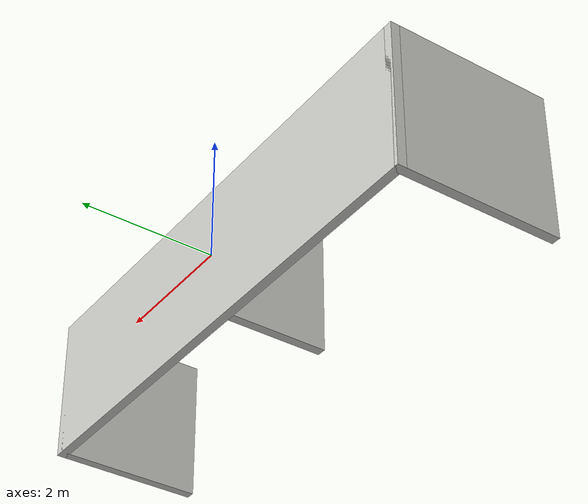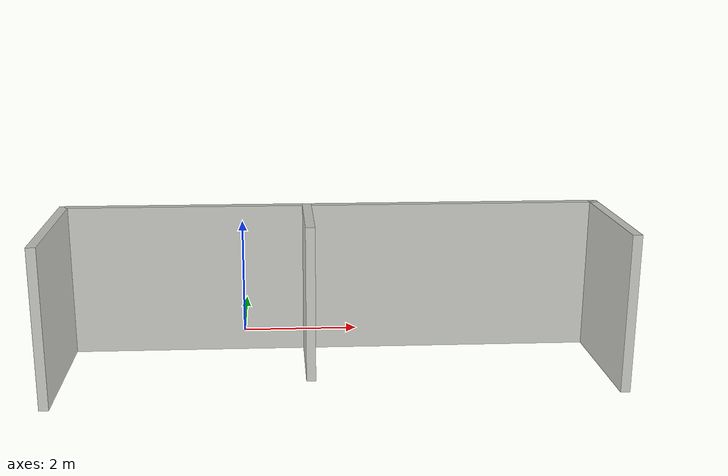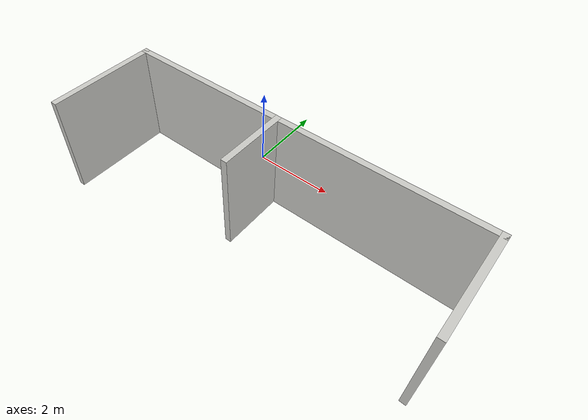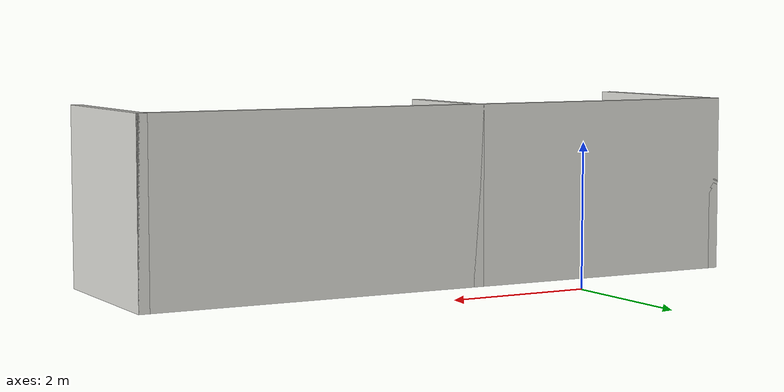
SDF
<?xml version='1.0'?>
<sdf version='1.7'>
  <model name='wall'>
    <pose>1.515 -1.8175 0 0 -0 0</pose>
    <link name='Wall_10'>
      <collision name='Wall_10_Collision'>
        <geometry>
          <box>
            <size>9 0.15 2.5</size>
          </box>
        </geometry>
        <pose>0 0 1.25 0 -0 0</pose>
      </collision>
      <visual name='Wall_10_Visual'>
        <pose>0 0 1.25 0 -0 0</pose>
        <geometry>
          <box>
            <size>9 0.15 2.5</size>
          </box>
        </geometry>
        <material>
          <script>
            <uri>file://media/materials/scripts/gazebo.material</uri>
            <name>Gazebo/CeilingTiled</name>
          </script>
          <ambient>1 0.764706 0.305882 1</ambient>
        </material>
        <meta>
          <layer>0</layer>
        </meta>
      </visual>
      <pose>0 0.8575 0 0 -0 0</pose>
    </link>
    <link name='Wall_11'>
      <collision name='Wall_11_Collision'>
        <geometry>
          <box>
            <size>2.5 0.15 2.5</size>
          </box>
        </geometry>
        <pose>0 0 1.25 0 -0 0</pose>
      </collision>
      <visual name='Wall_11_Visual'>
        <pose>0 0 1.25 0 -0 0</pose>
        <geometry>
          <box>
            <size>2.5 0.15 2.5</size>
          </box>
        </geometry>
        <material>
          <script>
            <uri>file://media/materials/scripts/gazebo.material</uri>
            <name>Gazebo/CeilingTiled</name>
          </script>
          <ambient>1 0.764706 0.305882 1</ambient>
        </material>
        <meta>
          <layer>0</layer>
        </meta>
      </visual>
      <pose>4.425 -0.3175 0 0 -0 -1.5708</pose>
    </link>
    <link name='Wall_13'>
      <collision name='Wall_13_Collision'>
        <geometry>
          <box>
            <size>1.75 0.15 2.5</size>
          </box>
        </geometry>
        <pose>0 0 1.25 0 -0 0</pose>
      </collision>
      <visual name='Wall_13_Visual'>
        <pose>0 0 1.25 0 -0 0</pose>
        <geometry>
          <box>
            <size>1.75 0.15 2.5</size>
          </box>
        </geometry>
        <material>
          <script>
            <uri>file://media/materials/scripts/gazebo.material</uri>
            <name>Gazebo/CeilingTiled</name>
          </script>
          <ambient>1 0.764706 0.305882 1</ambient>
        </material>
        <meta>
          <layer>0</layer>
        </meta>
      </visual>
      <pose>-0.415 0.0575 0 0 -0 -1.5708</pose>
    </link>
    <link name='Wall_15'>
      <collision name='Wall_15_Collision'>
        <geometry>
          <box>
            <size>2.75 0.15 2.5</size>
          </box>
        </geometry>
        <pose>0 0 1.25 0 -0 0</pose>
      </collision>
      <visual name='Wall_15_Visual'>
        <pose>0 0 1.25 0 -0 0</pose>
        <geometry>
          <box>
            <size>2.75 0.15 2.5</size>
          </box>
        </geometry>
        <material>
          <script>
            <uri>file://media/materials/scripts/gazebo.material</uri>
            <name>Gazebo/CeilingTiled</name>
          </script>
          <ambient>1 0.764706 0.305882 1</ambient>
        </material>
        <meta>
          <layer>0</layer>
        </meta>
      </visual>
      <pose>-4.425 -0.4425 0 0 -0 -1.5708</pose>
    </link>
    <static>1</static>
  </model>
</sdf>
